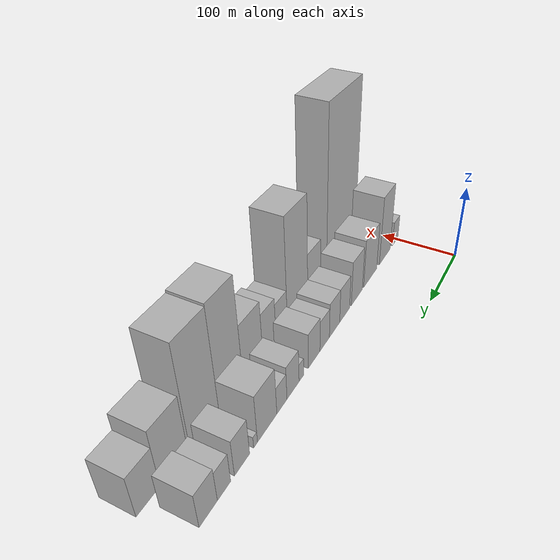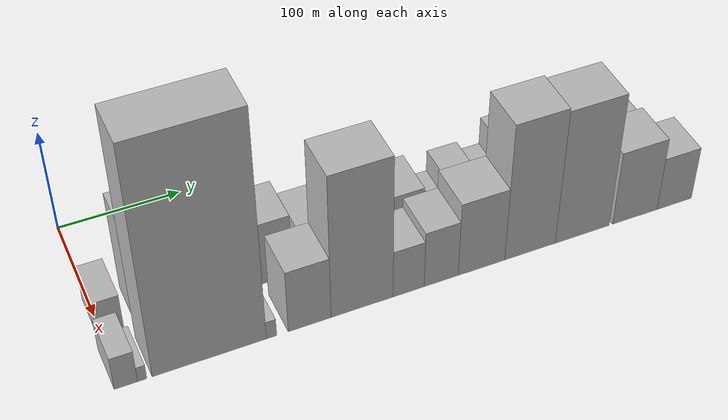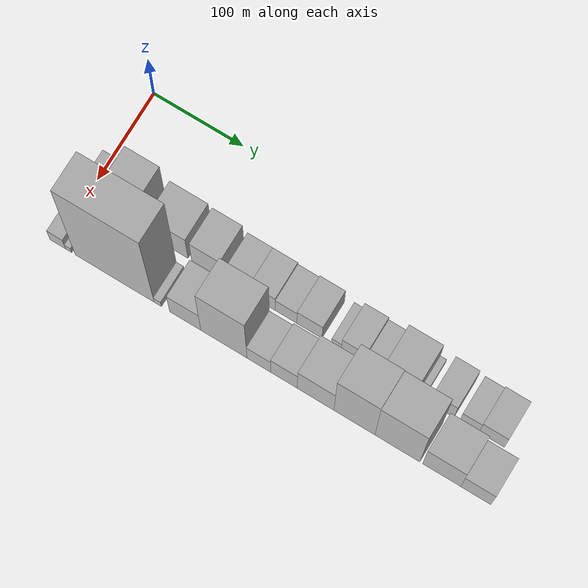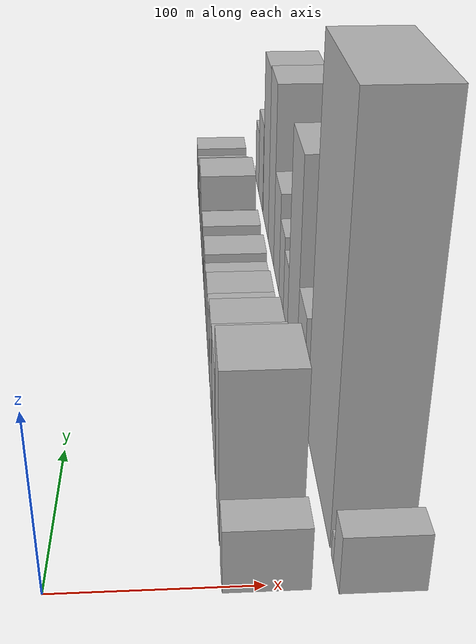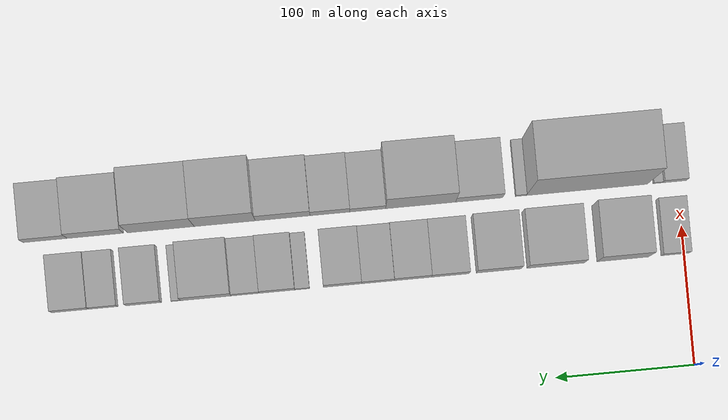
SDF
<sdf version="1.6">
 <world name="default">
  <model name="building_16">
   <static>1</static>
   <pose>100.0000 6.5254 0 0.000000 0.000000 0.000000</pose>
   <link name="link">
    <pose>0 0 18.00 0 0 0</pose>
    <collision name="collision"><geometry><box><size>40.0000 20.0990 36.0000</size></box></geometry></collision>
    <visual name="visual">
     <cast_shadows>0</cast_shadows>
     <geometry><box><size>40.0000 20.0990 36.0000</size></box></geometry>
     <material>
      <script>
       <uri>model://HANNAS_wall/materials/scripts</uri>
       <uri>model://HANNAS_wall/materials/textures</uri>
       <name>vrc/HANNAS_wall</name>
      </script>
     </material>
    </visual>
   </link>
  </model>
  <model name="building_17">
   <static>1</static>
   <pose>100.0000 44.1366 0 0.000000 0.000000 0.000000</pose>
   <link name="link">
    <pose>0 0 49.50 0 0 0</pose>
    <collision name="collision"><geometry><box><size>40.0000 37.1235 99.0000</size></box></geometry></collision>
    <visual name="visual">
     <cast_shadows>0</cast_shadows>
     <geometry><box><size>40.0000 37.1235 99.0000</size></box></geometry>
     <material>
      <script>
       <uri>model://HANNAS_wall/materials/scripts</uri>
       <uri>model://HANNAS_wall/materials/textures</uri>
       <name>vrc/HANNAS_wall</name>
      </script>
     </material>
    </visual>
   </link>
  </model>
  <model name="building_18">
   <static>1</static>
   <pose>100.0000 92.3656 0 0.000000 0.000000 0.000000</pose>
   <link name="link">
    <pose>0 0 34.50 0 0 0</pose>
    <collision name="collision"><geometry><box><size>40.0000 41.3346 69.0000</size></box></geometry></collision>
    <visual name="visual">
     <cast_shadows>0</cast_shadows>
     <geometry><box><size>40.0000 41.3346 69.0000</size></box></geometry>
     <material>
      <script>
       <uri>model://HANNAS_wall/materials/scripts</uri>
       <uri>model://HANNAS_wall/materials/textures</uri>
       <name>vrc/HANNAS_wall</name>
      </script>
     </material>
    </visual>
   </link>
  </model>
  <model name="building_19">
   <static>1</static>
   <pose>100.0000 133.2948 0 0.000000 0.000000 0.000000</pose>
   <link name="link">
    <pose>0 0 31.50 0 0 0</pose>
    <collision name="collision"><geometry><box><size>40.0000 32.5238 63.0000</size></box></geometry></collision>
    <visual name="visual">
     <cast_shadows>0</cast_shadows>
     <geometry><box><size>40.0000 32.5238 63.0000</size></box></geometry>
     <material>
      <script>
       <uri>model://HANNAS_wall/materials/scripts</uri>
       <uri>model://HANNAS_wall/materials/textures</uri>
       <name>vrc/HANNAS_wall</name>
      </script>
     </material>
    </visual>
   </link>
  </model>
  <model name="building_20">
   <static>1</static>
   <pose>100.0000 168.1452 0 0.000000 0.000000 0.000000</pose>
   <link name="link">
    <pose>0 0 24.00 0 0 0</pose>
    <collision name="collision"><geometry><box><size>40.0000 27.1771 48.0000</size></box></geometry></collision>
    <visual name="visual">
     <cast_shadows>0</cast_shadows>
     <geometry><box><size>40.0000 27.1771 48.0000</size></box></geometry>
     <material>
      <script>
       <uri>model://HANNAS_wall/materials/scripts</uri>
       <uri>model://HANNAS_wall/materials/textures</uri>
       <name>vrc/HANNAS_wall</name>
      </script>
     </material>
    </visual>
   </link>
  </model>
  <model name="building_21">
   <static>1</static>
   <pose>100.0000 195.1511 0 0.000000 0.000000 0.000000</pose>
   <link name="link">
    <pose>0 0 24.00 0 0 0</pose>
    <collision name="collision"><geometry><box><size>40.0000 26.8346 48.0000</size></box></geometry></collision>
    <visual name="visual">
     <cast_shadows>0</cast_shadows>
     <geometry><box><size>40.0000 26.8346 48.0000</size></box></geometry>
     <material>
      <script>
       <uri>model://HANNAS_wall/materials/scripts</uri>
       <uri>model://HANNAS_wall/materials/textures</uri>
       <name>vrc/HANNAS_wall</name>
      </script>
     </material>
    </visual>
   </link>
  </model>
  <model name="building_22">
   <static>1</static>
   <pose>100.0000 220.2766 0 0.000000 0.000000 0.000000</pose>
   <link name="link">
    <pose>0 0 21.00 0 0 0</pose>
    <collision name="collision"><geometry><box><size>40.0000 23.4163 42.0000</size></box></geometry></collision>
    <visual name="visual">
     <cast_shadows>0</cast_shadows>
     <geometry><box><size>40.0000 23.4163 42.0000</size></box></geometry>
     <material>
      <script>
       <uri>model://HANNAS_wall/materials/scripts</uri>
       <uri>model://HANNAS_wall/materials/textures</uri>
       <name>vrc/HANNAS_wall</name>
      </script>
     </material>
    </visual>
   </link>
  </model>
  <model name="building_23">
   <static>1</static>
   <pose>100.0000 245.6689 0 0.000000 0.000000 0.000000</pose>
   <link name="link">
    <pose>0 0 24.00 0 0 0</pose>
    <collision name="collision"><geometry><box><size>40.0000 27.3684 48.0000</size></box></geometry></collision>
    <visual name="visual">
     <cast_shadows>0</cast_shadows>
     <geometry><box><size>40.0000 27.3684 48.0000</size></box></geometry>
     <material>
      <script>
       <uri>model://HANNAS_wall/materials/scripts</uri>
       <uri>model://HANNAS_wall/materials/textures</uri>
       <name>vrc/HANNAS_wall</name>
      </script>
     </material>
    </visual>
   </link>
  </model>
  <model name="building_24">
   <static>1</static>
   <pose>100.0000 274.6113 0 0.000000 0.000000 0.000000</pose>
   <link name="link">
    <pose>0 0 12.00 0 0 0</pose>
    <collision name="collision"><geometry><box><size>40.0000 10.5164 24.0000</size></box></geometry></collision>
    <visual name="visual">
     <cast_shadows>0</cast_shadows>
     <geometry><box><size>40.0000 10.5164 24.0000</size></box></geometry>
     <material>
      <script>
       <uri>model://HANNAS_wall/materials/scripts</uri>
       <uri>model://HANNAS_wall/materials/textures</uri>
       <name>vrc/HANNAS_wall</name>
      </script>
     </material>
    </visual>
   </link>
  </model>
  <model name="building_25">
   <static>1</static>
   <pose>100.0000 292.6568 0 0.000000 0.000000 0.000000</pose>
   <link name="link">
    <pose>0 0 22.50 0 0 0</pose>
    <collision name="collision"><geometry><box><size>40.0000 25.5744 45.0000</size></box></geometry></collision>
    <visual name="visual">
     <cast_shadows>0</cast_shadows>
     <geometry><box><size>40.0000 25.5744 45.0000</size></box></geometry>
     <material>
      <script>
       <uri>model://HANNAS_wall/materials/scripts</uri>
       <uri>model://HANNAS_wall/materials/textures</uri>
       <name>vrc/HANNAS_wall</name>
      </script>
     </material>
    </visual>
   </link>
  </model>
  <model name="building_26">
   <static>1</static>
   <pose>100.0000 315.5172 0 0.000000 0.000000 0.000000</pose>
   <link name="link">
    <pose>0 0 18.00 0 0 0</pose>
    <collision name="collision"><geometry><box><size>40.0000 20.1464 36.0000</size></box></geometry></collision>
    <visual name="visual">
     <cast_shadows>0</cast_shadows>
     <geometry><box><size>40.0000 20.1464 36.0000</size></box></geometry>
     <material>
      <script>
       <uri>model://HANNAS_wall/materials/scripts</uri>
       <uri>model://HANNAS_wall/materials/textures</uri>
       <name>vrc/HANNAS_wall</name>
      </script>
     </material>
    </visual>
   </link>
  </model>
  <model name="building_27">
   <static>1</static>
   <pose>100.0000 343.7130 0 0.000000 0.000000 0.000000</pose>
   <link name="link">
    <pose>0 0 31.50 0 0 0</pose>
    <collision name="collision"><geometry><box><size>40.0000 36.2452 63.0000</size></box></geometry></collision>
    <visual name="visual">
     <cast_shadows>0</cast_shadows>
     <geometry><box><size>40.0000 36.2452 63.0000</size></box></geometry>
     <material>
      <script>
       <uri>model://HANNAS_wall/materials/scripts</uri>
       <uri>model://HANNAS_wall/materials/textures</uri>
       <name>vrc/HANNAS_wall</name>
      </script>
     </material>
    </visual>
   </link>
  </model>
  <model name="building_28">
   <static>1</static>
   <pose>100.0000 365.2541 0 0.000000 0.000000 0.000000</pose>
   <link name="link">
    <pose>0 0 7.50 0 0 0</pose>
    <collision name="collision"><geometry><box><size>40.0000 6.8370 15.0000</size></box></geometry></collision>
    <visual name="visual">
     <cast_shadows>0</cast_shadows>
     <geometry><box><size>40.0000 6.8370 15.0000</size></box></geometry>
     <material>
      <script>
       <uri>model://HANNAS_wall/materials/scripts</uri>
       <uri>model://HANNAS_wall/materials/textures</uri>
       <name>vrc/HANNAS_wall</name>
      </script>
     </material>
    </visual>
   </link>
  </model>
  <model name="building_29">
   <static>1</static>
   <pose>100.0000 388.3939 0 0.000000 0.000000 0.000000</pose>
   <link name="link">
    <pose>0 0 24.00 0 0 0</pose>
    <collision name="collision"><geometry><box><size>40.0000 25.4425 48.0000</size></box></geometry></collision>
    <visual name="visual">
     <cast_shadows>0</cast_shadows>
     <geometry><box><size>40.0000 25.4425 48.0000</size></box></geometry>
     <material>
      <script>
       <uri>model://HANNAS_wall/materials/scripts</uri>
       <uri>model://HANNAS_wall/materials/textures</uri>
       <name>vrc/HANNAS_wall</name>
      </script>
     </material>
    </visual>
   </link>
  </model>
  <model name="building_30">
   <static>1</static>
   <pose>100.0000 417.4255 0 0.000000 0.000000 0.000000</pose>
   <link name="link">
    <pose>0 0 19.50 0 0 0</pose>
    <collision name="collision"><geometry><box><size>40.0000 20.6208 39.0000</size></box></geometry></collision>
    <visual name="visual">
     <cast_shadows>0</cast_shadows>
     <geometry><box><size>40.0000 20.6208 39.0000</size></box></geometry>
     <material>
      <script>
       <uri>model://HANNAS_wall/materials/scripts</uri>
       <uri>model://HANNAS_wall/materials/textures</uri>
       <name>vrc/HANNAS_wall</name>
      </script>
     </material>
    </visual>
   </link>
  </model>
  <model name="building_31">
   <static>1</static>
   <pose>100.0000 441.1362 0 0.000000 0.000000 0.000000</pose>
   <link name="link">
    <pose>0 0 22.50 0 0 0</pose>
    <collision name="collision"><geometry><box><size>40.0000 26.8006 45.0000</size></box></geometry></collision>
    <visual name="visual">
     <cast_shadows>0</cast_shadows>
     <geometry><box><size>40.0000 26.8006 45.0000</size></box></geometry>
     <material>
      <script>
       <uri>model://HANNAS_wall/materials/scripts</uri>
       <uri>model://HANNAS_wall/materials/textures</uri>
       <name>vrc/HANNAS_wall</name>
      </script>
     </material>
    </visual>
   </link>
  </model>
  <model name="building_43">
   <static>1</static>
   <pose>152.0000 1.9424 0 0.000000 0.000000 0.000000</pose>
   <link name="link">
    <pose>0 0 16.50 0 0 0</pose>
    <collision name="collision"><geometry><box><size>40.0000 17.3242 33.0000</size></box></geometry></collision>
    <visual name="visual">
     <cast_shadows>0</cast_shadows>
     <geometry><box><size>40.0000 17.3242 33.0000</size></box></geometry>
     <material>
      <script>
       <uri>model://HANNAS_wall/materials/scripts</uri>
       <uri>model://HANNAS_wall/materials/textures</uri>
       <name>vrc/HANNAS_wall</name>
      </script>
     </material>
    </visual>
   </link>
  </model>
  <model name="building_44">
   <static>1</static>
   <pose>152.0000 14.0007 0 0.000000 0.000000 0.000000</pose>
   <link name="link">
    <pose>0 0 7.50 0 0 0</pose>
    <collision name="collision"><geometry><box><size>40.0000 6.7923 15.0000</size></box></geometry></collision>
    <visual name="visual">
     <cast_shadows>0</cast_shadows>
     <geometry><box><size>40.0000 6.7923 15.0000</size></box></geometry>
     <material>
      <script>
       <uri>model://HANNAS_wall/materials/scripts</uri>
       <uri>model://HANNAS_wall/materials/textures</uri>
       <name>vrc/HANNAS_wall</name>
      </script>
     </material>
    </visual>
   </link>
  </model>
  <model name="building_45">
   <static>1</static>
   <pose>152.0000 64.9566 0 0.000000 0.000000 0.000000</pose>
   <link name="link">
    <pose>0 0 112.50 0 0 0</pose>
    <collision name="collision"><geometry><box><size>40.0000 87.1195 225.0000</size></box></geometry></collision>
    <visual name="visual">
     <cast_shadows>0</cast_shadows>
     <geometry><box><size>40.0000 87.1195 225.0000</size></box></geometry>
     <material>
      <script>
       <uri>model://HANNAS_wall/materials/scripts</uri>
       <uri>model://HANNAS_wall/materials/textures</uri>
       <name>vrc/HANNAS_wall</name>
      </script>
     </material>
    </visual>
   </link>
  </model>
  <model name="building_46">
   <static>1</static>
   <pose>152.0000 112.5304 0 0.000000 0.000000 0.000000</pose>
   <link name="link">
    <pose>0 0 9.00 0 0 0</pose>
    <collision name="collision"><geometry><box><size>40.0000 8.0281 18.0000</size></box></geometry></collision>
    <visual name="visual">
     <cast_shadows>0</cast_shadows>
     <geometry><box><size>40.0000 8.0281 18.0000</size></box></geometry>
     <material>
      <script>
       <uri>model://HANNAS_wall/materials/scripts</uri>
       <uri>model://HANNAS_wall/materials/textures</uri>
       <name>vrc/HANNAS_wall</name>
      </script>
     </material>
    </visual>
   </link>
  </model>
  <model name="building_47">
   <static>1</static>
   <pose>152.0000 142.5628 0 0.000000 0.000000 0.000000</pose>
   <link name="link">
    <pose>0 0 31.50 0 0 0</pose>
    <collision name="collision"><geometry><box><size>40.0000 34.0367 63.0000</size></box></geometry></collision>
    <visual name="visual">
     <cast_shadows>0</cast_shadows>
     <geometry><box><size>40.0000 34.0367 63.0000</size></box></geometry>
     <material>
      <script>
       <uri>model://HANNAS_wall/materials/scripts</uri>
       <uri>model://HANNAS_wall/materials/textures</uri>
       <name>vrc/HANNAS_wall</name>
      </script>
     </material>
    </visual>
   </link>
  </model>
  <model name="building_48">
   <static>1</static>
   <pose>152.0000 184.6784 0 0.000000 0.000000 0.000000</pose>
   <link name="link">
    <pose>0 0 72.00 0 0 0</pose>
    <collision name="collision"><geometry><box><size>40.0000 50.1945 144.0000</size></box></geometry></collision>
    <visual name="visual">
     <cast_shadows>0</cast_shadows>
     <geometry><box><size>40.0000 50.1945 144.0000</size></box></geometry>
     <material>
      <script>
       <uri>model://HANNAS_wall/materials/scripts</uri>
       <uri>model://HANNAS_wall/materials/textures</uri>
       <name>vrc/HANNAS_wall</name>
      </script>
     </material>
    </visual>
   </link>
  </model>
  <model name="building_49">
   <static>1</static>
   <pose>152.0000 222.6661 0 0.000000 0.000000 0.000000</pose>
   <link name="link">
    <pose>0 0 24.00 0 0 0</pose>
    <collision name="collision"><geometry><box><size>40.0000 25.7808 48.0000</size></box></geometry></collision>
    <visual name="visual">
     <cast_shadows>0</cast_shadows>
     <geometry><box><size>40.0000 25.7808 48.0000</size></box></geometry>
     <material>
      <script>
       <uri>model://HANNAS_wall/materials/scripts</uri>
       <uri>model://HANNAS_wall/materials/textures</uri>
       <name>vrc/HANNAS_wall</name>
      </script>
     </material>
    </visual>
   </link>
  </model>
  <model name="building_50">
   <static>1</static>
   <pose>152.0000 249.8329 0 0.000000 0.000000 0.000000</pose>
   <link name="link">
    <pose>0 0 28.50 0 0 0</pose>
    <collision name="collision"><geometry><box><size>40.0000 28.5529 57.0000</size></box></geometry></collision>
    <visual name="visual">
     <cast_shadows>0</cast_shadows>
     <geometry><box><size>40.0000 28.5529 57.0000</size></box></geometry>
     <material>
      <script>
       <uri>model://HANNAS_wall/materials/scripts</uri>
       <uri>model://HANNAS_wall/materials/textures</uri>
       <name>vrc/HANNAS_wall</name>
      </script>
     </material>
    </visual>
   </link>
  </model>
  <model name="building_51">
   <static>1</static>
   <pose>152.0000 283.8152 0 0.000000 0.000000 0.000000</pose>
   <link name="link">
    <pose>0 0 37.50 0 0 0</pose>
    <collision name="collision"><geometry><box><size>40.0000 39.4115 75.0000</size></box></geometry></collision>
    <visual name="visual">
     <cast_shadows>0</cast_shadows>
     <geometry><box><size>40.0000 39.4115 75.0000</size></box></geometry>
     <material>
      <script>
       <uri>model://HANNAS_wall/materials/scripts</uri>
       <uri>model://HANNAS_wall/materials/textures</uri>
       <name>vrc/HANNAS_wall</name>
      </script>
     </material>
    </visual>
   </link>
  </model>
  <model name="building_52">
   <static>1</static>
   <pose>152.0000 325.4858 0 0.000000 0.000000 0.000000</pose>
   <link name="link">
    <pose>0 0 69.00 0 0 0</pose>
    <collision name="collision"><geometry><box><size>40.0000 43.9298 138.0000</size></box></geometry></collision>
    <visual name="visual">
     <cast_shadows>0</cast_shadows>
     <geometry><box><size>40.0000 43.9298 138.0000</size></box></geometry>
     <material>
      <script>
       <uri>model://HANNAS_wall/materials/scripts</uri>
       <uri>model://HANNAS_wall/materials/textures</uri>
       <name>vrc/HANNAS_wall</name>
      </script>
     </material>
    </visual>
   </link>
  </model>
  <model name="building_53">
   <static>1</static>
   <pose>152.0000 371.4032 0 0.000000 0.000000 0.000000</pose>
   <link name="link">
    <pose>0 0 67.50 0 0 0</pose>
    <collision name="collision"><geometry><box><size>40.0000 47.9051 135.0000</size></box></geometry></collision>
    <visual name="visual">
     <cast_shadows>0</cast_shadows>
     <geometry><box><size>40.0000 47.9051 135.0000</size></box></geometry>
     <material>
      <script>
       <uri>model://HANNAS_wall/materials/scripts</uri>
       <uri>model://HANNAS_wall/materials/textures</uri>
       <name>vrc/HANNAS_wall</name>
      </script>
     </material>
    </visual>
   </link>
  </model>
  <model name="building_54">
   <static>1</static>
   <pose>152.0000 418.5327 0 0.000000 0.000000 0.000000</pose>
   <link name="link">
    <pose>0 0 37.50 0 0 0</pose>
    <collision name="collision"><geometry><box><size>40.0000 40.3539 75.0000</size></box></geometry></collision>
    <visual name="visual">
     <cast_shadows>0</cast_shadows>
     <geometry><box><size>40.0000 40.3539 75.0000</size></box></geometry>
     <material>
      <script>
       <uri>model://HANNAS_wall/materials/scripts</uri>
       <uri>model://HANNAS_wall/materials/textures</uri>
       <name>vrc/HANNAS_wall</name>
      </script>
     </material>
    </visual>
   </link>
  </model>
  <model name="building_55">
   <static>1</static>
   <pose>152.0000 454.6258 0 0.000000 0.000000 0.000000</pose>
   <link name="link">
    <pose>0 0 27.00 0 0 0</pose>
    <collision name="collision"><geometry><box><size>40.0000 31.8323 54.0000</size></box></geometry></collision>
    <visual name="visual">
     <cast_shadows>0</cast_shadows>
     <geometry><box><size>40.0000 31.8323 54.0000</size></box></geometry>
     <material>
      <script>
       <uri>model://HANNAS_wall/materials/scripts</uri>
       <uri>model://HANNAS_wall/materials/textures</uri>
       <name>vrc/HANNAS_wall</name>
      </script>
     </material>
    </visual>
   </link>
  </model>
 </world>
</sdf>
